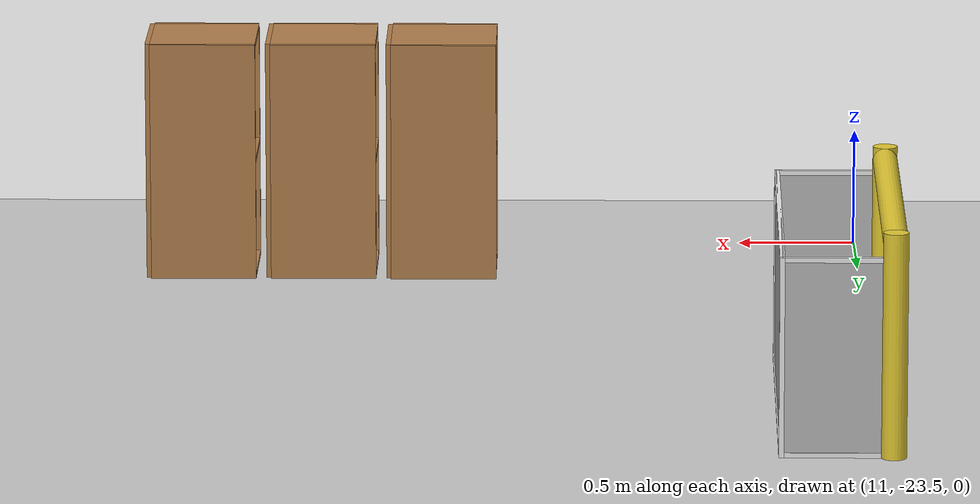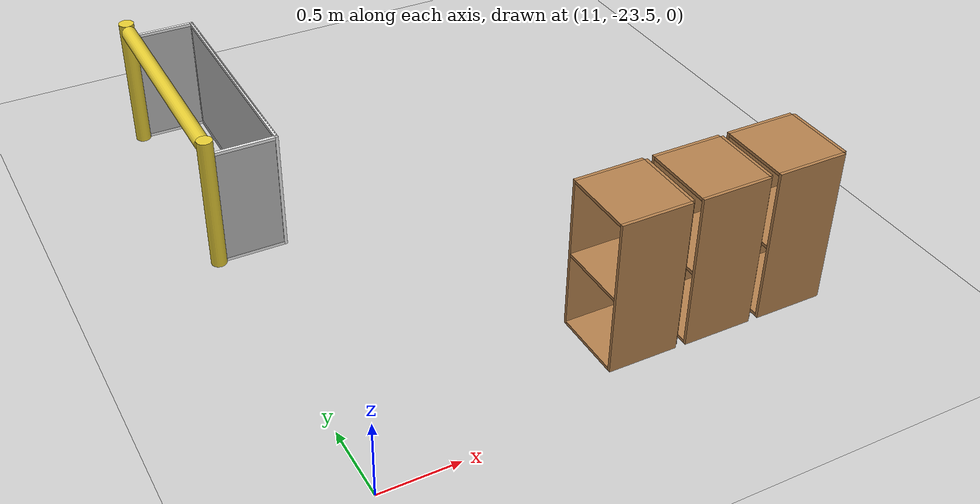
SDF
<sdf version="1.6">
 <world name="default">
  <model name="ground_plane">
   <static>1</static>
   <link name="link">
    <collision name="collision">
     <geometry><plane><normal>0 0 1</normal><size>100 100</size></plane></geometry>
     <surface>
      <contact><collide_bitmask>65535</collide_bitmask></contact>
      <friction><ode><mu>100</mu><mu2>50</mu2></ode></friction>
     </surface>
    </collision>
    <visual name="visual">
     <cast_shadows>0</cast_shadows>
     <geometry><plane><normal>0 0 1</normal><size>100 100</size></plane></geometry>
     <material>
      <script><uri>file://media/materials/scripts/gazebo.material</uri><name>Gazebo/Grey</name></script>
     </material>
    </visual>
   </link>
  </model>
  <model name="cabinet">
   <static>1</static>
   <link name="cabinet_bottom_plate">
    <inertial>
     <pose>0 0 -1 0 -0 0</pose>
     <inertia><ixx>2.05</ixx><ixy>0</ixy><ixz>0</ixz><iyy>2.05</iyy><iyz>0</iyz><izz>2.05</izz></inertia>
     <mass>25</mass>
    </inertial>
    <collision name="cabinet_bottom_plate_geom">
     <pose>0 0 0.01 0 -0 0</pose>
     <geometry><box><size>0.45 0.45 0.02</size></box></geometry>
    </collision>
    <visual name="cabinet_bottom_plate_geom_visual">
     <pose>0 0 0.01 0 -0 0</pose>
     <geometry><box><size>0.45 0.45 0.02</size></box></geometry>
     <material>
      <script><uri>file://media/materials/scripts/gazebo.material</uri><name>Gazebo/Wood</name></script>
     </material>
    </visual>
    <collision name="cabinet_bottom_plate_geom_cabinet_back_plate">
     <pose>0.235 0 0.51 0 -0 0</pose>
     <geometry><box><size>0.02 0.45 1.02</size></box></geometry>
    </collision>
    <visual name="cabinet_bottom_plate_geom_cabinet_back_plate_visual">
     <pose>0.235 0 0.51 0 -0 0</pose>
     <geometry><box><size>0.02 0.45 1.02</size></box></geometry>
     <material>
      <script><uri>file://media/materials/scripts/gazebo.material</uri><name>Gazebo/Wood</name></script>
     </material>
    </visual>
    <collision name="cabinet_bottom_plate_geom_cabinet_left_plate">
     <pose>0 0.235 0.51 0 -0 0</pose>
     <geometry><box><size>0.45 0.02 1.02</size></box></geometry>
    </collision>
    <visual name="cabinet_bottom_plate_geom_cabinet_left_plate_visual">
     <pose>0 0.235 0.51 0 -0 0</pose>
     <geometry><box><size>0.45 0.02 1.02</size></box></geometry>
     <material>
      <script><uri>file://media/materials/scripts/gazebo.material</uri><name>Gazebo/Wood</name></script>
     </material>
    </visual>
    <collision name="cabinet_bottom_plate_geom_cabinet_middle_plate">
     <pose>0 0 0.51 0 -0 0</pose>
     <geometry><box><size>0.45 0.45 0.02</size></box></geometry>
    </collision>
    <visual name="cabinet_bottom_plate_geom_cabinet_middle_plate_visual">
     <pose>0 0 0.51 0 -0 0</pose>
     <geometry><box><size>0.45 0.45 0.02</size></box></geometry>
     <material>
      <script><uri>file://media/materials/scripts/gazebo.material</uri><name>Gazebo/Wood</name></script>
     </material>
    </visual>
    <collision name="cabinet_bottom_plate_geom_cabinet_right_plate">
     <pose>0 -0.235 0.51 0 -0 0</pose>
     <geometry><box><size>0.45 0.02 1.02</size></box></geometry>
    </collision>
    <visual name="cabinet_bottom_plate_geom_cabinet_right_plate_visual">
     <pose>0 -0.235 0.51 0 -0 0</pose>
     <geometry><box><size>0.45 0.02 1.02</size></box></geometry>
     <material>
      <script><uri>file://media/materials/scripts/gazebo.material</uri><name>Gazebo/Wood</name></script>
     </material>
    </visual>
    <collision name="cabinet_bottom_plate_geom_cabinet_top_plate">
     <pose>0 0 1.01 0 -0 0</pose>
     <geometry><box><size>0.45 0.45 0.02</size></box></geometry>
    </collision>
    <visual name="cabinet_bottom_plate_geom_cabinet_top_plate_visual">
     <pose>0 0 1.01 0 -0 0</pose>
     <geometry><box><size>0.45 0.45 0.02</size></box></geometry>
     <material>
      <script><uri>file://media/materials/scripts/gazebo.material</uri><name>Gazebo/Wood</name></script>
     </material>
    </visual>
   </link>
   <pose>12.7793 -23.0302 0 0 -0 0</pose>
  </model>
  <model name="cabinet_0">
   <static>1</static>
   <link name="cabinet_bottom_plate">
    <inertial>
     <pose>0 0 -1 0 -0 0</pose>
     <inertia><ixx>2.05</ixx><ixy>0</ixy><ixz>0</ixz><iyy>2.05</iyy><iyz>0</iyz><izz>2.05</izz></inertia>
     <mass>25</mass>
    </inertial>
    <collision name="cabinet_bottom_plate_geom">
     <pose>0 0 0.01 0 -0 0</pose>
     <geometry><box><size>0.45 0.45 0.02</size></box></geometry>
    </collision>
    <visual name="cabinet_bottom_plate_geom_visual">
     <pose>0 0 0.01 0 -0 0</pose>
     <geometry><box><size>0.45 0.45 0.02</size></box></geometry>
     <material>
      <script><uri>file://media/materials/scripts/gazebo.material</uri><name>Gazebo/Wood</name></script>
     </material>
    </visual>
    <collision name="cabinet_bottom_plate_geom_cabinet_back_plate">
     <pose>0.235 0 0.51 0 -0 0</pose>
     <geometry><box><size>0.02 0.45 1.02</size></box></geometry>
    </collision>
    <visual name="cabinet_bottom_plate_geom_cabinet_back_plate_visual">
     <pose>0.235 0 0.51 0 -0 0</pose>
     <geometry><box><size>0.02 0.45 1.02</size></box></geometry>
     <material>
      <script><uri>file://media/materials/scripts/gazebo.material</uri><name>Gazebo/Wood</name></script>
     </material>
    </visual>
    <collision name="cabinet_bottom_plate_geom_cabinet_left_plate">
     <pose>0 0.235 0.51 0 -0 0</pose>
     <geometry><box><size>0.45 0.02 1.02</size></box></geometry>
    </collision>
    <visual name="cabinet_bottom_plate_geom_cabinet_left_plate_visual">
     <pose>0 0.235 0.51 0 -0 0</pose>
     <geometry><box><size>0.45 0.02 1.02</size></box></geometry>
     <material>
      <script><uri>file://media/materials/scripts/gazebo.material</uri><name>Gazebo/Wood</name></script>
     </material>
    </visual>
    <collision name="cabinet_bottom_plate_geom_cabinet_middle_plate">
     <pose>0 0 0.51 0 -0 0</pose>
     <geometry><box><size>0.45 0.45 0.02</size></box></geometry>
    </collision>
    <visual name="cabinet_bottom_plate_geom_cabinet_middle_plate_visual">
     <pose>0 0 0.51 0 -0 0</pose>
     <geometry><box><size>0.45 0.45 0.02</size></box></geometry>
     <material>
      <script><uri>file://media/materials/scripts/gazebo.material</uri><name>Gazebo/Wood</name></script>
     </material>
    </visual>
    <collision name="cabinet_bottom_plate_geom_cabinet_right_plate">
     <pose>0 -0.235 0.51 0 -0 0</pose>
     <geometry><box><size>0.45 0.02 1.02</size></box></geometry>
    </collision>
    <visual name="cabinet_bottom_plate_geom_cabinet_right_plate_visual">
     <pose>0 -0.235 0.51 0 -0 0</pose>
     <geometry><box><size>0.45 0.02 1.02</size></box></geometry>
     <material>
      <script><uri>file://media/materials/scripts/gazebo.material</uri><name>Gazebo/Wood</name></script>
     </material>
    </visual>
    <collision name="cabinet_bottom_plate_geom_cabinet_top_plate">
     <pose>0 0 1.01 0 -0 0</pose>
     <geometry><box><size>0.45 0.45 0.02</size></box></geometry>
    </collision>
    <visual name="cabinet_bottom_plate_geom_cabinet_top_plate_visual">
     <pose>0 0 1.01 0 -0 0</pose>
     <geometry><box><size>0.45 0.45 0.02</size></box></geometry>
     <material>
      <script><uri>file://media/materials/scripts/gazebo.material</uri><name>Gazebo/Wood</name></script>
     </material>
    </visual>
   </link>
   <pose>13.294 -23.0333 0 0 -0 0</pose>
  </model>
  <model name="cabinet_1">
   <static>1</static>
   <link name="cabinet_bottom_plate">
    <inertial>
     <pose>0 0 -1 0 -0 0</pose>
     <inertia><ixx>2.05</ixx><ixy>0</ixy><ixz>0</ixz><iyy>2.05</iyy><iyz>0</iyz><izz>2.05</izz></inertia>
     <mass>25</mass>
    </inertial>
    <collision name="cabinet_bottom_plate_geom">
     <pose>0 0 0.01 0 -0 0</pose>
     <geometry><box><size>0.45 0.45 0.02</size></box></geometry>
    </collision>
    <visual name="cabinet_bottom_plate_geom_visual">
     <pose>0 0 0.01 0 -0 0</pose>
     <geometry><box><size>0.45 0.45 0.02</size></box></geometry>
     <material>
      <script><uri>file://media/materials/scripts/gazebo.material</uri><name>Gazebo/Wood</name></script>
     </material>
    </visual>
    <collision name="cabinet_bottom_plate_geom_cabinet_back_plate">
     <pose>0.235 0 0.51 0 -0 0</pose>
     <geometry><box><size>0.02 0.45 1.02</size></box></geometry>
    </collision>
    <visual name="cabinet_bottom_plate_geom_cabinet_back_plate_visual">
     <pose>0.235 0 0.51 0 -0 0</pose>
     <geometry><box><size>0.02 0.45 1.02</size></box></geometry>
     <material>
      <script><uri>file://media/materials/scripts/gazebo.material</uri><name>Gazebo/Wood</name></script>
     </material>
    </visual>
    <collision name="cabinet_bottom_plate_geom_cabinet_left_plate">
     <pose>0 0.235 0.51 0 -0 0</pose>
     <geometry><box><size>0.45 0.02 1.02</size></box></geometry>
    </collision>
    <visual name="cabinet_bottom_plate_geom_cabinet_left_plate_visual">
     <pose>0 0.235 0.51 0 -0 0</pose>
     <geometry><box><size>0.45 0.02 1.02</size></box></geometry>
     <material>
      <script><uri>file://media/materials/scripts/gazebo.material</uri><name>Gazebo/Wood</name></script>
     </material>
    </visual>
    <collision name="cabinet_bottom_plate_geom_cabinet_middle_plate">
     <pose>0 0 0.51 0 -0 0</pose>
     <geometry><box><size>0.45 0.45 0.02</size></box></geometry>
    </collision>
    <visual name="cabinet_bottom_plate_geom_cabinet_middle_plate_visual">
     <pose>0 0 0.51 0 -0 0</pose>
     <geometry><box><size>0.45 0.45 0.02</size></box></geometry>
     <material>
      <script><uri>file://media/materials/scripts/gazebo.material</uri><name>Gazebo/Wood</name></script>
     </material>
    </visual>
    <collision name="cabinet_bottom_plate_geom_cabinet_right_plate">
     <pose>0 -0.235 0.51 0 -0 0</pose>
     <geometry><box><size>0.45 0.02 1.02</size></box></geometry>
    </collision>
    <visual name="cabinet_bottom_plate_geom_cabinet_right_plate_visual">
     <pose>0 -0.235 0.51 0 -0 0</pose>
     <geometry><box><size>0.45 0.02 1.02</size></box></geometry>
     <material>
      <script><uri>file://media/materials/scripts/gazebo.material</uri><name>Gazebo/Wood</name></script>
     </material>
    </visual>
    <collision name="cabinet_bottom_plate_geom_cabinet_top_plate">
     <pose>0 0 1.01 0 -0 0</pose>
     <geometry><box><size>0.45 0.45 0.02</size></box></geometry>
    </collision>
    <visual name="cabinet_bottom_plate_geom_cabinet_top_plate_visual">
     <pose>0 0 1.01 0 -0 0</pose>
     <geometry><box><size>0.45 0.45 0.02</size></box></geometry>
     <material>
      <script><uri>file://media/materials/scripts/gazebo.material</uri><name>Gazebo/Wood</name></script>
     </material>
    </visual>
   </link>
   <pose>13.8077 -23.0331 0 0 -0 0</pose>
  </model>
  <model name="RoboCup 2014 SPL Goal_0_clone">
   <static>1</static>
   <link name="left_post">
    <pose>0 0.8 0.45 0 -0 0</pose>
    <collision name="collision">
     <geometry><cylinder><radius>0.05</radius><length>0.9</length></cylinder></geometry>
    </collision>
    <visual name="visual">
     <geometry><cylinder><radius>0.05</radius><length>0.9</length></cylinder></geometry>
     <material>
      <script><uri>file://media/materials/scripts/gazebo.material</uri><name>Gazebo/ZincYellow</name></script>
     </material>
    </visual>
   </link>
   <link name="left_support_horiz_lower">
    <pose>0.24 0.8 0.01 0 -0 0</pose>
    <collision name="collision"><geometry><box><size>0.38 0.02 0.02</size></box></geometry></collision>
    <visual name="visual">
     <geometry><box><size>0.38 0.02 0.02</size></box></geometry>
     <material>
      <script><uri>file://media/materials/scripts/gazebo.material</uri><name>Gazebo/White</name></script>
     </material>
    </visual>
   </link>
   <link name="left_support_horiz_upper">
    <pose>0.24 0.8 0.79 0 -0 0</pose>
    <collision name="collision"><geometry><box><size>0.38 0.02 0.02</size></box></geometry></collision>
    <visual name="visual">
     <geometry><box><size>0.38 0.02 0.02</size></box></geometry>
     <material>
      <script><uri>file://media/materials/scripts/gazebo.material</uri><name>Gazebo/White</name></script>
     </material>
    </visual>
   </link>
   <link name="left_support_vertical">
    <pose>0.44 0.8 0.4 3.14159 1.57079 3.14159</pose>
    <collision name="collision"><geometry><box><size>0.8 0.02 0.02</size></box></geometry></collision>
    <visual name="visual">
     <geometry><box><size>0.8 0.02 0.02</size></box></geometry>
     <material>
      <script><uri>file://media/materials/scripts/gazebo.material</uri><name>Gazebo/White</name></script>
     </material>
    </visual>
   </link>
   <link name="right_support_horiz_lower">
    <pose>0.24 -0.8 0.01 0 -0 0</pose>
    <collision name="collision"><geometry><box><size>0.38 0.02 0.02</size></box></geometry></collision>
    <visual name="visual">
     <geometry><box><size>0.38 0.02 0.02</size></box></geometry>
     <material>
      <script><uri>file://media/materials/scripts/gazebo.material</uri><name>Gazebo/White</name></script>
     </material>
    </visual>
   </link>
   <link name="right_support_horiz_upper">
    <pose>0.24 -0.8 0.79 0 -0 0</pose>
    <collision name="collision"><geometry><box><size>0.38 0.02 0.02</size></box></geometry></collision>
    <visual name="visual">
     <geometry><box><size>0.38 0.02 0.02</size></box></geometry>
     <material>
      <script><uri>file://media/materials/scripts/gazebo.material</uri><name>Gazebo/White</name></script>
     </material>
    </visual>
   </link>
   <link name="right_support_vertical">
    <pose>0.44 -0.8 0.4 3.14159 1.57079 3.14159</pose>
    <collision name="collision"><geometry><box><size>0.8 0.02 0.02</size></box></geometry></collision>
    <visual name="visual">
     <geometry><box><size>0.8 0.02 0.02</size></box></geometry>
     <material>
      <script><uri>file://media/materials/scripts/gazebo.material</uri><name>Gazebo/White</name></script>
     </material>
    </visual>
   </link>
   <link name="center_support_horiz_lower">
    <pose>0.44 0 0.01 3.14159 1.57079 3.14159</pose>
    <collision name="collision"><geometry><box><size>0.02 1.58 0.02</size></box></geometry></collision>
    <visual name="visual">
     <geometry><box><size>0.02 1.58 0.02</size></box></geometry>
     <material>
      <script><uri>file://media/materials/scripts/gazebo.material</uri><name>Gazebo/White</name></script>
     </material>
    </visual>
   </link>
   <link name="center_support_horiz_upper">
    <pose>0.44 0 0.79 3.14159 1.57079 3.14159</pose>
    <collision name="collision"><geometry><box><size>0.02 1.58 0.02</size></box></geometry></collision>
    <visual name="visual">
     <geometry><box><size>0.02 1.58 0.02</size></box></geometry>
     <material>
      <script><uri>file://media/materials/scripts/gazebo.material</uri><name>Gazebo/White</name></script>
     </material>
    </visual>
   </link>
   <link name="right_post">
    <pose>0 -0.8 0.45 0 -0 0</pose>
    <collision name="collision">
     <geometry><cylinder><radius>0.05</radius><length>0.9</length></cylinder></geometry>
    </collision>
    <visual name="visual">
     <geometry><cylinder><radius>0.05</radius><length>0.9</length></cylinder></geometry>
     <material>
      <script><uri>file://media/materials/scripts/gazebo.material</uri><name>Gazebo/ZincYellow</name></script>
     </material>
    </visual>
   </link>
   <link name="crossbar">
    <pose>0 0 0.85 1.57 1.57 0</pose>
    <collision name="collision">
     <geometry><cylinder><radius>0.05</radius><length>1.5</length></cylinder></geometry>
    </collision>
    <visual name="visual">
     <geometry><cylinder><radius>0.05</radius><length>1.5</length></cylinder></geometry>
     <material>
      <script><uri>file://media/materials/scripts/gazebo.material</uri><name>Gazebo/ZincYellow</name></script>
     </material>
    </visual>
   </link>
   <link name="center_net">
    <pose>0.44 0 0.4 0 -0 0</pose>
    <collision name="collision"><geometry><box><size>0.01 1.6 0.8</size></box></geometry></collision>
    <visual name="visual">
     <geometry><box><size>0.01 1.6 0.8</size></box></geometry>
     <material>
      <script>
       <uri>model://robocup09_spl_field/materials/scripts/</uri>
       <uri>model://robocup09_spl_field/materials/textures/</uri>
       <name>RoboCup/Net</name>
      </script>
     </material>
    </visual>
   </link>
   <link name="left_net">
    <pose>0.24 0.8 0.4 0 -0 0</pose>
    <collision name="collision"><geometry><box><size>0.38 0.01 0.76</size></box></geometry></collision>
    <visual name="visual">
     <geometry><box><size>0.38 0.01 0.76</size></box></geometry>
     <material>
      <script>
       <uri>model://robocup09_spl_field/materials/scripts/</uri>
       <uri>model://robocup09_spl_field/materials/textures/</uri>
       <name>RoboCup/Net</name>
      </script>
     </material>
    </visual>
   </link>
   <link name="right_net">
    <pose>0.24 -0.8 0.4 0 -0 0</pose>
    <collision name="collision"><geometry><box><size>0.38 0.01 0.76</size></box></geometry></collision>
    <visual name="visual">
     <geometry><box><size>0.38 0.01 0.76</size></box></geometry>
     <material>
      <script>
       <uri>model://robocup09_spl_field/materials/scripts/</uri>
       <uri>model://robocup09_spl_field/materials/textures/</uri>
       <name>RoboCup/Net</name>
      </script>
     </material>
    </visual>
   </link>
   <pose>10.9584 -20.512 0 0 0 -0.009196</pose>
  </model>
 </world>
</sdf>
